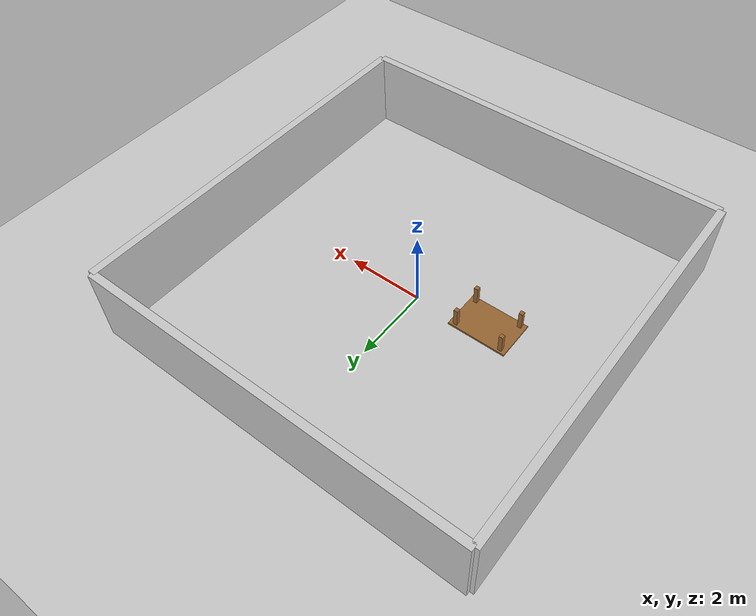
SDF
<?xml version="1.0" ?>
<sdf version="1.7">
  <world name="simple_room">
    <!-- Include the default DRC environment -->
    <include>
      <uri>model://ground_plane</uri>
    </include>

    <include>
      <uri>model://sun</uri>
    </include>

    <!-- Simple room with walls -->
    <model name="room_wall_1">
      <pose>0 5 1 0 0 0</pose>
      <link name="link">
        <collision name="collision">
          <geometry>
            <box>
              <size>10 0.2 2</size>
            </box>
          </geometry>
        </collision>
        <visual name="visual">
          <geometry>
            <box>
              <size>10 0.2 2</size>
            </box>
          </geometry>
          <material>
            <ambient>0.8 0.8 0.8 1</ambient>
            <diffuse>0.8 0.8 0.8 1</diffuse>
            <specular>0.8 0.8 0.8 1</specular>
          </material>
        </visual>
      </link>
    </model>

    <model name="room_wall_2">
      <pose>5 0 1 0 0 1.57</pose>
      <link name="link">
        <collision name="collision">
          <geometry>
            <box>
              <size>10 0.2 2</size>
            </box>
          </geometry>
        </collision>
        <visual name="visual">
          <geometry>
            <box>
              <size>10 0.2 2</size>
            </box>
          </geometry>
          <material>
            <ambient>0.8 0.8 0.8 1</ambient>
            <diffuse>0.8 0.8 0.8 1</diffuse>
            <specular>0.8 0.8 0.8 1</specular>
          </material>
        </visual>
      </link>
    </model>

    <model name="room_wall_3">
      <pose>0 -5 1 0 0 0</pose>
      <link name="link">
        <collision name="collision">
          <geometry>
            <box>
              <size>10 0.2 2</size>
            </box>
          </geometry>
        </collision>
        <visual name="visual">
          <geometry>
            <box>
              <size>10 0.2 2</size>
            </box>
          </geometry>
          <material>
            <ambient>0.8 0.8 0.8 1</ambient>
            <diffuse>0.8 0.8 0.8 1</diffuse>
            <specular>0.8 0.8 0.8 1</specular>
          </material>
        </visual>
      </link>
    </model>

    <model name="room_wall_4">
      <pose>-5 0 1 0 0 1.57</pose>
      <link name="link">
        <collision name="collision">
          <geometry>
            <box>
              <size>10 0.2 2</size>
            </box>
          </geometry>
        </collision>
        <visual name="visual">
          <geometry>
            <box>
              <size>10 0.2 2</size>
            </box>
          </geometry>
          <material>
            <ambient>0.8 0.8 0.8 1</ambient>
            <diffuse>0.8 0.8 0.8 1</diffuse>
            <specular>0.8 0.8 0.8 1</specular>
          </material>
        </visual>
      </link>
    </model>

    <!-- Add a simple table for the robot to interact with -->
    <model name="table">
      <pose>-2 0 0.5 0 0 0</pose>
      <link name="table_top">
        <collision name="collision">
          <geometry>
            <box>
              <size>1.5 1 0.05</size>
            </box>
          </geometry>
        </collision>
        <visual name="visual">
          <geometry>
            <box>
              <size>1.5 1 0.05</size>
            </box>
          </geometry>
          <material>
            <ambient>0.6 0.4 0.2 1</ambient>
            <diffuse>0.6 0.4 0.2 1</diffuse>
            <specular>0.6 0.4 0.2 1</specular>
          </material>
        </visual>
        <inertial>
          <mass>10.0</mass>
          <inertia>
            <ixx>1.0</ixx>
            <ixy>0.0</ixy>
            <ixz>0.0</ixz>
            <iyy>1.0</iyy>
            <iyz>0.0</iyz>
            <izz>1.0</izz>
          </inertia>
        </inertial>
      </link>
      <link name="leg_1">
        <pose>-0.6 -0.4 0.25 0 0 0</pose>
        <collision name="collision">
          <geometry>
            <box>
              <size>0.1 0.1 0.5</size>
            </box>
          </geometry>
        </collision>
        <visual name="visual">
          <geometry>
            <box>
              <size>0.1 0.1 0.5</size>
            </box>
          </geometry>
          <material>
            <ambient>0.6 0.4 0.2 1</ambient>
            <diffuse>0.6 0.4 0.2 1</diffuse>
            <specular>0.6 0.4 0.2 1</specular>
          </material>
        </visual>
        <inertial>
          <mass>1.0</mass>
          <inertia>
            <ixx>1.0</ixx>
            <ixy>0.0</ixy>
            <ixz>0.0</ixz>
            <iyy>1.0</iyy>
            <iyz>0.0</iyz>
            <izz>1.0</izz>
          </inertia>
        </inertial>
      </link>
      <link name="leg_2">
        <pose>0.6 -0.4 0.25 0 0 0</pose>
        <collision name="collision">
          <geometry>
            <box>
              <size>0.1 0.1 0.5</size>
            </box>
          </geometry>
        </collision>
        <visual name="visual">
          <geometry>
            <box>
              <size>0.1 0.1 0.5</size>
            </box>
          </geometry>
          <material>
            <ambient>0.6 0.4 0.2 1</ambient>
            <diffuse>0.6 0.4 0.2 1</diffuse>
            <specular>0.6 0.4 0.2 1</specular>
          </material>
        </visual>
        <inertial>
          <mass>1.0</mass>
          <inertia>
            <ixx>1.0</ixx>
            <ixy>0.0</ixy>
            <ixz>0.0</ixz>
            <iyy>1.0</iyy>
            <iyz>0.0</iyz>
            <izz>1.0</izz>
          </inertia>
        </inertial>
      </link>
      <link name="leg_3">
        <pose>-0.6 0.4 0.25 0 0 0</pose>
        <collision name="collision">
          <geometry>
            <box>
              <size>0.1 0.1 0.5</size>
            </box>
          </geometry>
        </collision>
        <visual name="visual">
          <geometry>
            <box>
              <size>0.1 0.1 0.5</size>
            </box>
          </geometry>
          <material>
            <ambient>0.6 0.4 0.2 1</ambient>
            <diffuse>0.6 0.4 0.2 1</diffuse>
            <specular>0.6 0.4 0.2 1</specular>
          </material>
        </visual>
        <inertial>
          <mass>1.0</mass>
          <inertia>
            <ixx>1.0</ixx>
            <ixy>0.0</ixy>
            <ixz>0.0</ixz>
            <iyy>1.0</iyy>
            <iyz>0.0</iyz>
            <izz>1.0</izz>
          </inertia>
        </inertial>
      </link>
      <link name="leg_4">
        <pose>0.6 0.4 0.25 0 0 0</pose>
        <collision name="collision">
          <geometry>
            <box>
              <size>0.1 0.1 0.5</size>
            </box>
          </geometry>
        </collision>
        <visual name="visual">
          <geometry>
            <box>
              <size>0.1 0.1 0.5</size>
            </box>
          </geometry>
          <material>
            <ambient>0.6 0.4 0.2 1</ambient>
            <diffuse>0.6 0.4 0.2 1</diffuse>
            <specular>0.6 0.4 0.2 1</specular>
          </material>
        </visual>
        <inertial>
          <mass>1.0</mass>
          <inertia>
            <ixx>1.0</ixx>
            <ixy>0.0</ixy>
            <ixz>0.0</ixz>
            <iyy>1.0</iyy>
            <iyz>0.0</iyz>
            <izz>1.0</izz>
          </inertia>
        </inertial>
      </link>
      <joint name="top_leg_1" type="fixed">
        <parent>table_top</parent>
        <child>leg_1</child>
      </joint>
      <joint name="top_leg_2" type="fixed">
        <parent>table_top</parent>
        <child>leg_2</child>
      </joint>
      <joint name="top_leg_3" type="fixed">
        <parent>table_top</parent>
        <child>leg_3</child>
      </joint>
      <joint name="top_leg_4" type="fixed">
        <parent>table_top</parent>
        <child>leg_4</child>
      </joint>
    </model>

  </world>
</sdf>
